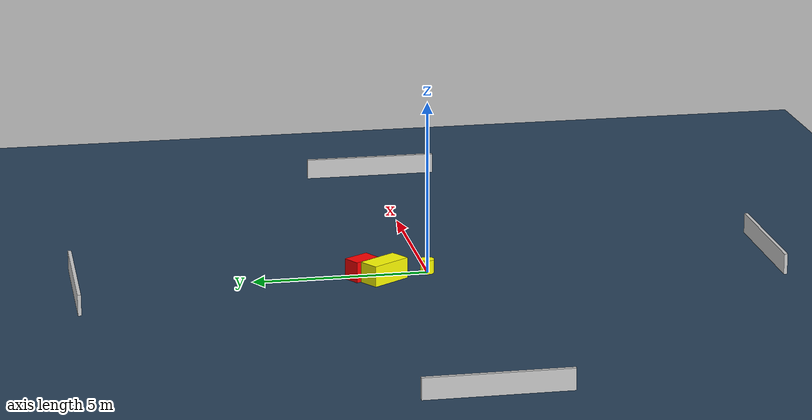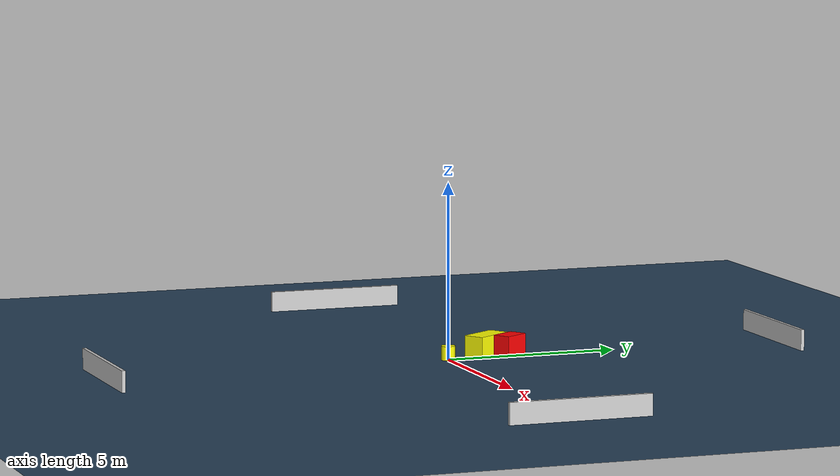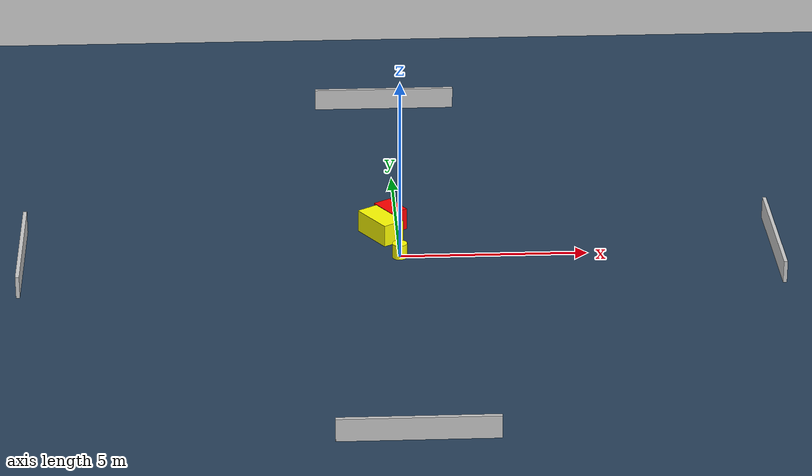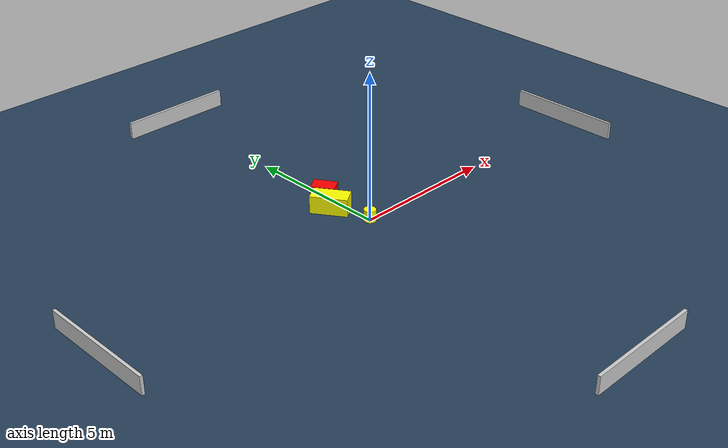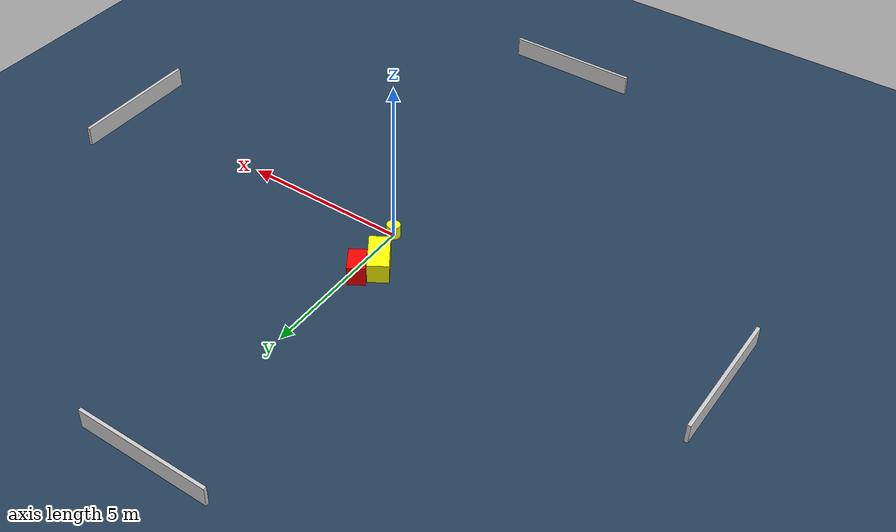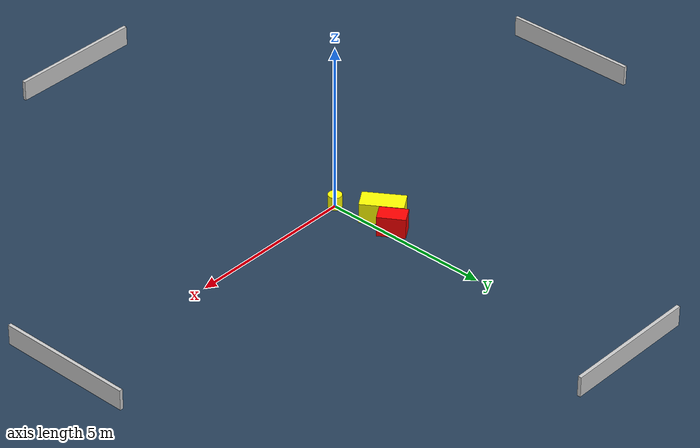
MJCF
<?xml version="1.0" ?>
<mujoco model="generated_environment">
  <option timestep="0.01" integrator="RK4" cone="elliptic"/>
  <default>
    <geom density="1"/>
  </default>
  <asset>
    <texture builtin="gradient" height="3072" name="skybox" rgb1="0.3 0.5 0.7" rgb2="0 0 0" type="skybox" width="512"/>
    <texture builtin="checker" height="300" name="groundplane" rgb1="0.2 0.3 0.4" rgb2="0.1 0.2 0.3" type="2d" width="300"/>
    <material name="groundplane" reflectance="0.2" texrepeat="5 5" texture="groundplane"/>
  </asset>
  <worldbody>
    <light dir="0 0 -1" directional="true" pos="0 0 1.5"/>
    <geom condim="3" friction="0.5 0.005 0.001" material="groundplane" name="floor" pos="0 0 0" size="0 0 0.05" type="plane"/>
    <body name="walls">
      <geom name="wall_1" condim="4" pos="-10.0 0.0 0.3" rgba="0.800000011920929 0.800000011920929 0.800000011920929 1.0" size="0.05 2.0 0.3" type="box"/>
      <geom name="wall_2" condim="4" pos="10.0 0.0 0.3" rgba="0.800000011920929 0.800000011920929 0.800000011920929 1.0" size="0.05 2.0 0.3" type="box"/>
      <geom name="wall_3" condim="4" pos="0.0 -10.0 0.3" rgba="0.800000011920929 0.800000011920929 0.800000011920929 1.0" size="2.0 0.05 0.3" type="box"/>
      <geom name="wall_4" condim="4" pos="0.0 10.0 0.3" rgba="0.800000011920929 0.800000011920929 0.800000011920929 1.0" size="2.0 0.05 0.3" type="box"/>
    </body>
    <body name="robot">
      <joint name="joint_x" type="slide" pos="0 0 0" axis="1 0 0"/>
      <joint name="joint_y" type="slide" pos="0 0 0" axis="0 1 0"/>
      <geom name="robot" type="cylinder" pos="0.0 0.0 0.2" size="0.2 0.2 0.0" mass="5.0" friction="1.0 0.005 0.0001" condim="4" rgba="1.0 1.0 0.0 1.0"/>
    </body>
    <body name="obstacle_1_movable">
      <geom name="obstacle_1_movable" condim="4" pos="-0.4553789032934307 1.3143403431770253 0.3" euler="0 0 303.34646878504395" friction="0.0 0.005 0.001" rgba="1.0 1.0 0.0 1.0" size="0.6136999117947239 0.30525707792835605 0.3" type="box" mass="0.1"/>
      <joint type="free"/>
    </body>
    <body name="obstacle_2_static">
      <geom name="obstacle_2_static" condim="4" pos="-0.160820316005579 1.9156359919888395 0.3" euler="0 0 122.54792139248794" friction="0.0 0.005 0.001" rgba="1.0 0.0 0.0 1.0" size="0.39896833478305516 0.25812441503279143 0.3" type="box"/>
    </body>
  </worldbody>
  <actuator>
    <motor name="actuator_x" joint="joint_x" gear="1" ctrlrange="-1 1"/>
    <motor name="actuator_y" joint="joint_y" gear="1" ctrlrange="-1 1"/>
  </actuator>
</mujoco>
